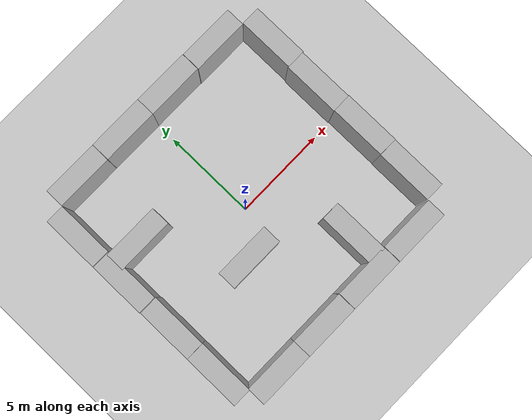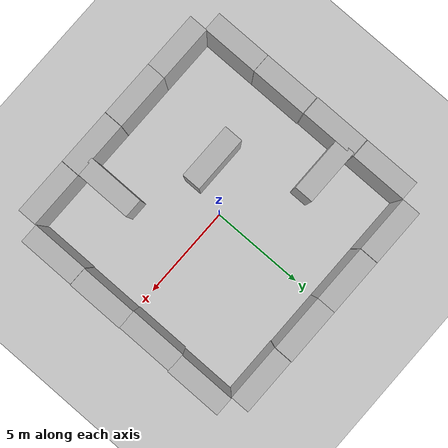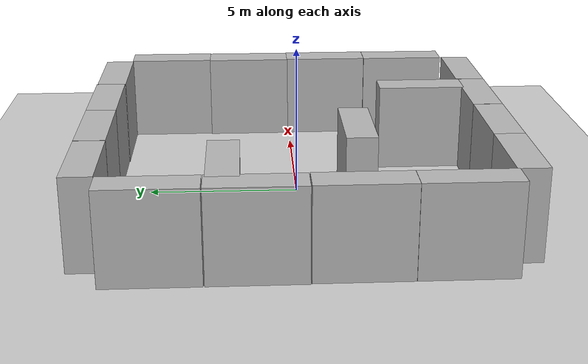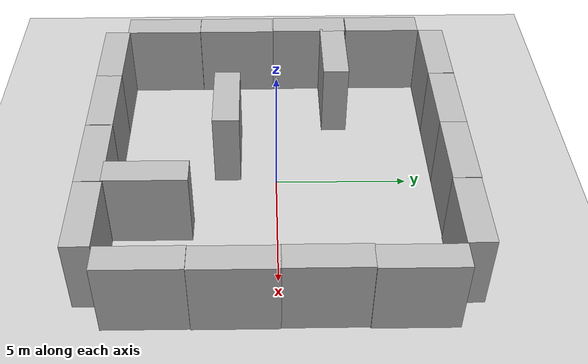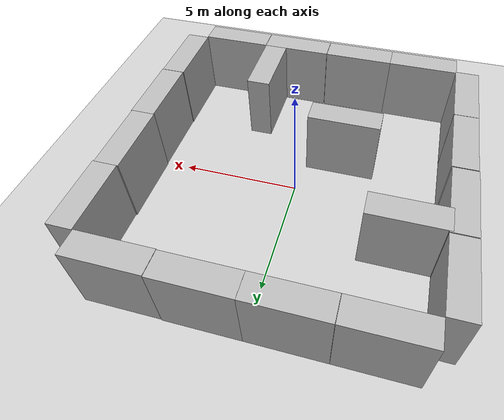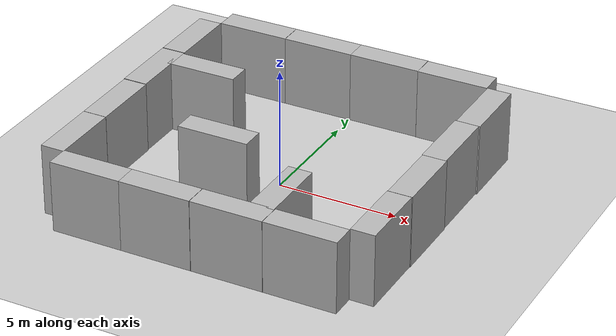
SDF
<sdf version="1.7">
 <world name="default">
  <light name="sun" type="directional">
   <pose>0 0 10 0 -0 0</pose>
   <diffuse>0.8 0.8 0.8 1</diffuse>
   <specular>0.2 0.2 0.2 1</specular>
   <attenuation>
    <range>1000</range>
    <constant>0.9</constant>
    <linear>0.01</linear>
    <quadratic>0.001</quadratic>
   </attenuation>
   <direction>-0.5 0.1 -0.9</direction>
   <spot><inner_angle>0</inner_angle><outer_angle>0</outer_angle><falloff>0</falloff></spot>
  </light>
  <model name="ground_plane">
   <static>1</static>
   <link name="link">
    <collision name="collision">
     <geometry><plane><normal>0 0 1</normal><size>100 100</size></plane></geometry>
     <surface>
      <contact><collide_bitmask>65535</collide_bitmask></contact>
      <friction><ode><mu>100</mu><mu2>50</mu2></ode></friction>
     </surface>
    </collision>
    <visual name="visual">
     <cast_shadows>0</cast_shadows>
     <geometry><plane><normal>0 0 1</normal><size>100 100</size></plane></geometry>
     <material>
      <script><uri>file://media/materials/scripts/gazebo.material</uri><name>Gazebo/Grey</name></script>
     </material>
    </visual>
   </link>
  </model>
  <gravity>0 0 -9.8</gravity>
  <magnetic_field>6e-06 2.3e-05 -4.2e-05</magnetic_field>
  <atmosphere type="adiabatic"/>
  <physics type="ode">
   <max_step_size>0.001</max_step_size>
   <real_time_factor>1</real_time_factor>
   <real_time_update_rate>1000</real_time_update_rate>
  </physics>
  <scene><ambient>0.4 0.4 0.4 1</ambient><background>0.7 0.7 0.7 1</background><shadows>1</shadows></scene>
  <audio><device>default</device></audio>
  <spherical_coordinates>
   <surface_model>EARTH_WGS84</surface_model>
   <latitude_deg>0</latitude_deg>
   <longitude_deg>0</longitude_deg>
   <elevation>0</elevation>
   <heading_deg>0</heading_deg>
  </spherical_coordinates>
  <model name="brick_box_3x1x3">
   <static>1</static>
   <link name="chassis">
    <pose>0 0 1.5 0 -0 0</pose>
    <collision name="collision"><geometry><box><size>3 1 3</size></box></geometry></collision>
    <visual name="visual">
     <geometry><mesh><uri>model://brick_box_3x1x3/meshes/simple_box.dae</uri><scale>3 1 3</scale></mesh></geometry>
     <material>
      <script>
       <uri>model://brick_box_3x1x3/materials/scripts</uri>
       <uri>model://brick_box_3x1x3/materials/textures</uri>
       <name>BrickBox/Diffuse</name>
      </script>
     </material>
    </visual>
   </link>
   <pose>-4.49439 6.51686 0 0 -0 0</pose>
  </model>
  <model name="brick_box_3x1x3_0">
   <static>1</static>
   <link name="chassis">
    <pose>0 0 1.5 0 -0 0</pose>
    <collision name="collision"><geometry><box><size>3 1 3</size></box></geometry></collision>
    <visual name="visual">
     <geometry><mesh><uri>model://brick_box_3x1x3/meshes/simple_box.dae</uri><scale>3 1 3</scale></mesh></geometry>
     <material>
      <script>
       <uri>model://brick_box_3x1x3/materials/scripts</uri>
       <uri>model://brick_box_3x1x3/materials/textures</uri>
       <name>BrickBox/Diffuse</name>
      </script>
     </material>
    </visual>
   </link>
   <pose>-1.48315 6.51686 0 0 -0 0</pose>
  </model>
  <model name="brick_box_3x1x3_1">
   <static>1</static>
   <link name="chassis">
    <pose>0 0 1.5 0 -0 0</pose>
    <collision name="collision"><geometry><box><size>3 1 3</size></box></geometry></collision>
    <visual name="visual">
     <geometry><mesh><uri>model://brick_box_3x1x3/meshes/simple_box.dae</uri><scale>3 1 3</scale></mesh></geometry>
     <material>
      <script>
       <uri>model://brick_box_3x1x3/materials/scripts</uri>
       <uri>model://brick_box_3x1x3/materials/textures</uri>
       <name>BrickBox/Diffuse</name>
      </script>
     </material>
    </visual>
   </link>
   <pose>1.50562 6.51686 0 0 -0 0</pose>
  </model>
  <model name="brick_box_3x1x3_2">
   <static>1</static>
   <link name="chassis">
    <pose>0 0 1.5 0 -0 0</pose>
    <collision name="collision"><geometry><box><size>3 1 3</size></box></geometry></collision>
    <visual name="visual">
     <geometry><mesh><uri>model://brick_box_3x1x3/meshes/simple_box.dae</uri><scale>3 1 3</scale></mesh></geometry>
     <material>
      <script>
       <uri>model://brick_box_3x1x3/materials/scripts</uri>
       <uri>model://brick_box_3x1x3/materials/textures</uri>
       <name>BrickBox/Diffuse</name>
      </script>
     </material>
    </visual>
   </link>
   <pose>4.51686 6.49439 0 0 -0 0</pose>
  </model>
  <model name="brick_box_3x1x3_3">
   <static>1</static>
   <link name="chassis">
    <pose>0 0 1.5 0 -0 0</pose>
    <collision name="collision"><geometry><box><size>3 1 3</size></box></geometry></collision>
    <visual name="visual">
     <geometry><mesh><uri>model://brick_box_3x1x3/meshes/simple_box.dae</uri><scale>3 1 3</scale></mesh></geometry>
     <material>
      <script>
       <uri>model://brick_box_3x1x3/materials/scripts</uri>
       <uri>model://brick_box_3x1x3/materials/textures</uri>
       <name>BrickBox/Diffuse</name>
      </script>
     </material>
    </visual>
   </link>
   <pose>4.51686 -6.49439 0 0 -0 0</pose>
  </model>
  <model name="brick_box_3x1x3_4">
   <static>1</static>
   <link name="chassis">
    <pose>0 0 1.5 0 -0 0</pose>
    <collision name="collision"><geometry><box><size>3 1 3</size></box></geometry></collision>
    <visual name="visual">
     <geometry><mesh><uri>model://brick_box_3x1x3/meshes/simple_box.dae</uri><scale>3 1 3</scale></mesh></geometry>
     <material>
      <script>
       <uri>model://brick_box_3x1x3/materials/scripts</uri>
       <uri>model://brick_box_3x1x3/materials/textures</uri>
       <name>BrickBox/Diffuse</name>
      </script>
     </material>
    </visual>
   </link>
   <pose>1.50562 -6.49439 0 0 -0 0</pose>
  </model>
  <model name="brick_box_3x1x3_5">
   <static>1</static>
   <link name="chassis">
    <pose>0 0 1.5 0 -0 0</pose>
    <collision name="collision"><geometry><box><size>3 1 3</size></box></geometry></collision>
    <visual name="visual">
     <geometry><mesh><uri>model://brick_box_3x1x3/meshes/simple_box.dae</uri><scale>3 1 3</scale></mesh></geometry>
     <material>
      <script>
       <uri>model://brick_box_3x1x3/materials/scripts</uri>
       <uri>model://brick_box_3x1x3/materials/textures</uri>
       <name>BrickBox/Diffuse</name>
      </script>
     </material>
    </visual>
   </link>
   <pose>-1.50562 -6.49439 0 0 -0 0</pose>
  </model>
  <model name="brick_box_3x1x3_6">
   <static>1</static>
   <link name="chassis">
    <pose>0 0 1.5 0 -0 0</pose>
    <collision name="collision"><geometry><box><size>3 1 3</size></box></geometry></collision>
    <visual name="visual">
     <geometry><mesh><uri>model://brick_box_3x1x3/meshes/simple_box.dae</uri><scale>3 1 3</scale></mesh></geometry>
     <material>
      <script>
       <uri>model://brick_box_3x1x3/materials/scripts</uri>
       <uri>model://brick_box_3x1x3/materials/textures</uri>
       <name>BrickBox/Diffuse</name>
      </script>
     </material>
    </visual>
   </link>
   <pose>-4.49439 -6.49439 0 0 -0 0</pose>
  </model>
  <model name="brick_box_3x1x3_7_clone">
   <static>1</static>
   <link name="chassis">
    <pose>0 0 1.5 0 -0 0</pose>
    <collision name="collision"><geometry><box><size>3 1 3</size></box></geometry></collision>
    <visual name="visual">
     <geometry><mesh><uri>model://brick_box_3x1x3/meshes/simple_box.dae</uri><scale>3 1 3</scale></mesh></geometry>
     <material>
      <script>
       <uri>model://brick_box_3x1x3/materials/scripts</uri>
       <uri>model://brick_box_3x1x3/materials/textures</uri>
       <name>BrickBox/Diffuse</name>
      </script>
     </material>
    </visual>
   </link>
   <pose>-6.49917 4.49548 0 0 -0 1.57</pose>
  </model>
  <model name="brick_box_3x1x3_7_clone_0">
   <static>1</static>
   <link name="chassis">
    <pose>0 0 1.5 0 -0 0</pose>
    <collision name="collision"><geometry><box><size>3 1 3</size></box></geometry></collision>
    <visual name="visual">
     <geometry><mesh><uri>model://brick_box_3x1x3/meshes/simple_box.dae</uri><scale>3 1 3</scale></mesh></geometry>
     <material>
      <script>
       <uri>model://brick_box_3x1x3/materials/scripts</uri>
       <uri>model://brick_box_3x1x3/materials/textures</uri>
       <name>BrickBox/Diffuse</name>
      </script>
     </material>
    </visual>
   </link>
   <pose>-6.49917 1.46424 0 0 -0 1.57</pose>
  </model>
  <model name="brick_box_3x1x3_7_clone_1">
   <static>1</static>
   <link name="chassis">
    <pose>0 0 1.5 0 -0 0</pose>
    <collision name="collision"><geometry><box><size>3 1 3</size></box></geometry></collision>
    <visual name="visual">
     <geometry><mesh><uri>model://brick_box_3x1x3/meshes/simple_box.dae</uri><scale>3 1 3</scale></mesh></geometry>
     <material>
      <script>
       <uri>model://brick_box_3x1x3/materials/scripts</uri>
       <uri>model://brick_box_3x1x3/materials/textures</uri>
       <name>BrickBox/Diffuse</name>
      </script>
     </material>
    </visual>
   </link>
   <pose>-6.47348 -1.56699 0 0 -0 1.57</pose>
  </model>
  <model name="brick_box_3x1x3_7_clone_2">
   <static>1</static>
   <link name="chassis">
    <pose>0 0 1.5 0 -0 0</pose>
    <collision name="collision"><geometry><box><size>3 1 3</size></box></geometry></collision>
    <visual name="visual">
     <geometry><mesh><uri>model://brick_box_3x1x3/meshes/simple_box.dae</uri><scale>3 1 3</scale></mesh></geometry>
     <material>
      <script>
       <uri>model://brick_box_3x1x3/materials/scripts</uri>
       <uri>model://brick_box_3x1x3/materials/textures</uri>
       <name>BrickBox/Diffuse</name>
      </script>
     </material>
    </visual>
   </link>
   <pose>-6.47348 -4.57254 0 0 -0 1.57</pose>
  </model>
  <model name="brick_box_3x1x3_7_clone_clone">
   <static>1</static>
   <link name="chassis">
    <pose>0 0 1.5 0 -0 0</pose>
    <collision name="collision"><geometry><box><size>3 1 3</size></box></geometry></collision>
    <visual name="visual">
     <geometry><mesh><uri>model://brick_box_3x1x3/meshes/simple_box.dae</uri><scale>3 1 3</scale></mesh></geometry>
     <material>
      <script>
       <uri>model://brick_box_3x1x3/materials/scripts</uri>
       <uri>model://brick_box_3x1x3/materials/textures</uri>
       <name>BrickBox/Diffuse</name>
      </script>
     </material>
    </visual>
   </link>
   <pose>6.55055 4.52276 0 0 -0 1.57</pose>
  </model>
  <model name="brick_box_3x1x3_7_clone_clone_0">
   <static>1</static>
   <link name="chassis">
    <pose>0 0 1.5 0 -0 0</pose>
    <collision name="collision"><geometry><box><size>3 1 3</size></box></geometry></collision>
    <visual name="visual">
     <geometry><mesh><uri>model://brick_box_3x1x3/meshes/simple_box.dae</uri><scale>3 1 3</scale></mesh></geometry>
     <material>
      <script>
       <uri>model://brick_box_3x1x3/materials/scripts</uri>
       <uri>model://brick_box_3x1x3/materials/textures</uri>
       <name>BrickBox/Diffuse</name>
      </script>
     </material>
    </visual>
   </link>
   <pose>6.49917 -4.4425 0 0 -0 1.57</pose>
  </model>
  <model name="brick_box_3x1x3_7_clone_clone_1">
   <static>1</static>
   <link name="chassis">
    <pose>0 0 1.5 0 -0 0</pose>
    <collision name="collision"><geometry><box><size>3 1 3</size></box></geometry></collision>
    <visual name="visual">
     <geometry><mesh><uri>model://brick_box_3x1x3/meshes/simple_box.dae</uri><scale>3 1 3</scale></mesh></geometry>
     <material>
      <script>
       <uri>model://brick_box_3x1x3/materials/scripts</uri>
       <uri>model://brick_box_3x1x3/materials/textures</uri>
       <name>BrickBox/Diffuse</name>
      </script>
     </material>
    </visual>
   </link>
   <pose>6.52486 -1.43695 0 0 -0 1.57</pose>
  </model>
  <model name="brick_box_3x1x3_7_clone_clone_2">
   <static>1</static>
   <link name="chassis">
    <pose>0 0 1.5 0 -0 0</pose>
    <collision name="collision"><geometry><box><size>3 1 3</size></box></geometry></collision>
    <visual name="visual">
     <geometry><mesh><uri>model://brick_box_3x1x3/meshes/simple_box.dae</uri><scale>3 1 3</scale></mesh></geometry>
     <material>
      <script>
       <uri>model://brick_box_3x1x3/materials/scripts</uri>
       <uri>model://brick_box_3x1x3/materials/textures</uri>
       <name>BrickBox/Diffuse</name>
      </script>
     </material>
    </visual>
   </link>
   <pose>6.49917 1.5429 0 0 -0 1.57</pose>
  </model>
  <model name="brick_box_3x1x3_7">
   <static>1</static>
   <link name="chassis">
    <pose>0 0 1.5 0 -0 0</pose>
    <collision name="collision"><geometry><box><size>3 1 3</size></box></geometry></collision>
    <visual name="visual">
     <geometry><mesh><uri>model://brick_box_3x1x3/meshes/simple_box.dae</uri><scale>3 1 3</scale></mesh></geometry>
     <material>
      <script>
       <uri>model://brick_box_3x1x3/materials/scripts</uri>
       <uri>model://brick_box_3x1x3/materials/textures</uri>
       <name>BrickBox/Diffuse</name>
      </script>
     </material>
    </visual>
   </link>
   <pose>-4.6496 2.41631 0 0 -0 0</pose>
  </model>
  <model name="brick_box_3x1x3_7_clone_clone_2_clone">
   <static>1</static>
   <link name="chassis">
    <pose>0 0 1.5 0 -0 0</pose>
    <collision name="collision"><geometry><box><size>3 1 3</size></box></geometry></collision>
    <visual name="visual">
     <geometry><mesh><uri>model://brick_box_3x1x3/meshes/simple_box.dae</uri><scale>3 1 3</scale></mesh></geometry>
     <material>
      <script>
       <uri>model://brick_box_3x1x3/materials/scripts</uri>
       <uri>model://brick_box_3x1x3/materials/textures</uri>
       <name>BrickBox/Diffuse</name>
      </script>
     </material>
    </visual>
   </link>
   <pose>2.49178 -4.57094 0 0 -0 1.57</pose>
  </model>
  <model name="brick_box_3x1x3_8">
   <static>1</static>
   <link name="chassis">
    <pose>0 0 1.5 0 -0 0</pose>
    <collision name="collision"><geometry><box><size>3 1 3</size></box></geometry></collision>
    <visual name="visual">
     <geometry><mesh><uri>model://brick_box_3x1x3/meshes/simple_box.dae</uri><scale>3 1 3</scale></mesh></geometry>
     <material>
      <script>
       <uri>model://brick_box_3x1x3/materials/scripts</uri>
       <uri>model://brick_box_3x1x3/materials/textures</uri>
       <name>BrickBox/Diffuse</name>
      </script>
     </material>
    </visual>
   </link>
   <pose>-1.66975 -1.87365 0 0 -0 0</pose>
  </model>
 </world>
</sdf>
